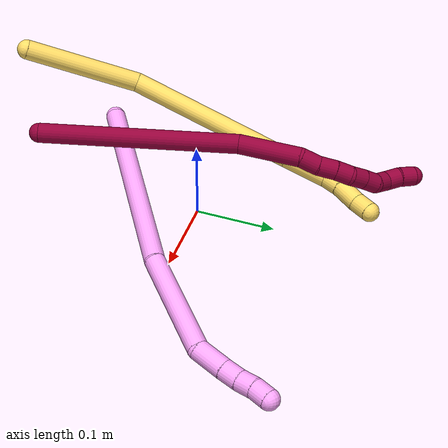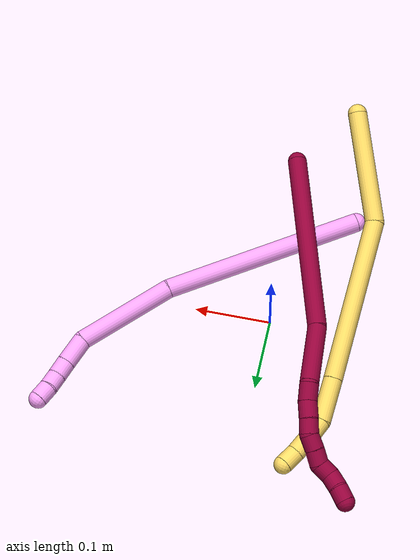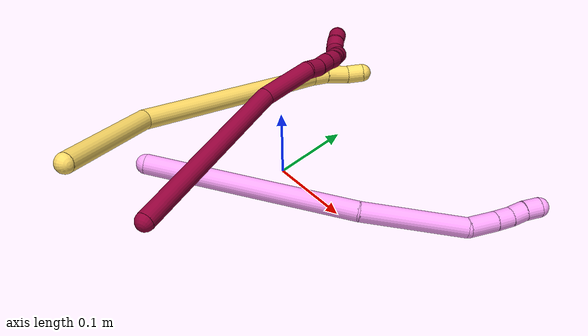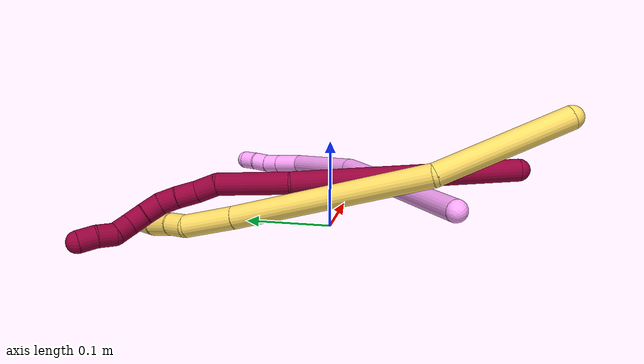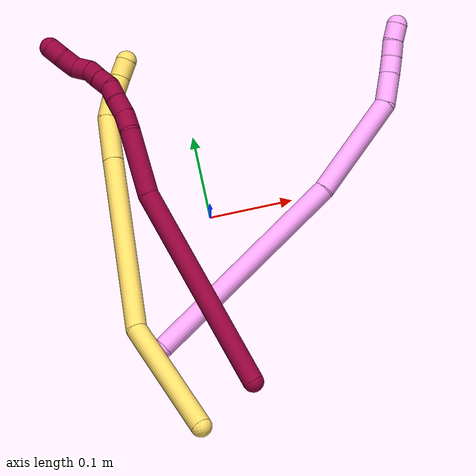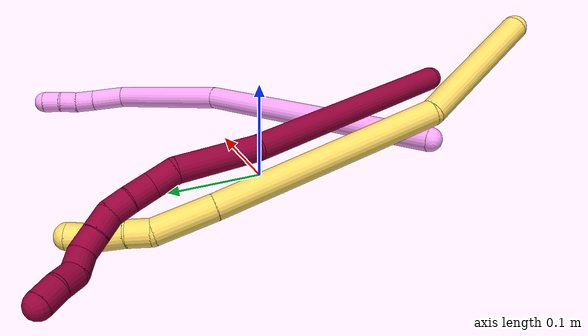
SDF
<sdf version="1.7">
 <world name="default">
  <model name="4">
   <static>0</static>
   <link name="4">
    <collision name="collision-cylinder-e_1_1_4">
     <pose>0.071654 0.084258 0.075057 -0.843086 0.565763 -0.259231</pose>
     <geometry><cylinder><radius>0.0125</radius><length>0.267337</length></cylinder></geometry>
     <surface>
      <friction><ode><mu>1.16</mu><mu2>1.16</mu2><slip1>0</slip1><slip2>0</slip2></ode></friction>
      <contact><ode><kp>1e+06</kp><kd>1</kd><max_vel>0</max_vel><min_depth>0.001</min_depth></ode></contact>
     </surface>
    </collision>
    <visual name="visual-cylinder-e_1_1_4">
     <pose>0.071654 0.084258 0.075057 -0.843086 0.565763 -0.259231</pose>
     <geometry><cylinder><radius>0.0125</radius><length>0.267337</length></cylinder></geometry>
     <material><ambient>1 0.65098 0.996078 1</ambient></material>
    </visual>
    <collision name="collision-cylinder-e_2_4_5">
     <pose>0.183529 0.214082 0.175608 -1.0607 0.65637 -0.394145</pose>
     <geometry><cylinder><radius>0.0125</radius><length>0.131817</length></cylinder></geometry>
     <surface>
      <friction><ode><mu>1.16</mu><mu2>1.16</mu2><slip1>0</slip1><slip2>0</slip2></ode></friction>
      <contact><ode><kp>1e+06</kp><kd>1</kd><max_vel>0</max_vel><min_depth>0.001</min_depth></ode></contact>
     </surface>
    </collision>
    <visual name="visual-cylinder-e_2_4_5">
     <pose>0.183529 0.214082 0.175608 -1.0607 0.65637 -0.394145</pose>
     <geometry><cylinder><radius>0.0125</radius><length>0.131817</length></cylinder></geometry>
     <material><ambient>1 0.65098 0.996078 1</ambient></material>
    </visual>
    <collision name="collision-cylinder-e_3_5_6">
     <pose>0.233503 0.275925 0.201005 -1.57674 0.539871 -0.542936</pose>
     <geometry><cylinder><radius>0.0125</radius><length>0.03795</length></cylinder></geometry>
     <surface>
      <friction><ode><mu>1.16</mu><mu2>1.16</mu2><slip1>0</slip1><slip2>0</slip2></ode></friction>
      <contact><ode><kp>1e+06</kp><kd>1</kd><max_vel>0</max_vel><min_depth>0.001</min_depth></ode></contact>
     </surface>
    </collision>
    <visual name="visual-cylinder-e_3_5_6">
     <pose>0.233503 0.275925 0.201005 -1.57674 0.539871 -0.542936</pose>
     <geometry><cylinder><radius>0.0125</radius><length>0.03795</length></cylinder></geometry>
     <material><ambient>1 0.65098 0.996078 1</ambient></material>
    </visual>
    <collision name="collision-cylinder-e_4_6_7">
     <pose>0.248565 0.30188 0.20061 -1.60156 0.501411 -0.516401</pose>
     <geometry><cylinder><radius>0.0125</radius><length>0.022086</length></cylinder></geometry>
     <surface>
      <friction><ode><mu>1.16</mu><mu2>1.16</mu2><slip1>0</slip1><slip2>0</slip2></ode></friction>
      <contact><ode><kp>1e+06</kp><kd>1</kd><max_vel>0</max_vel><min_depth>0.001</min_depth></ode></contact>
     </surface>
    </collision>
    <visual name="visual-cylinder-e_4_6_7">
     <pose>0.248565 0.30188 0.20061 -1.60156 0.501411 -0.516401</pose>
     <geometry><cylinder><radius>0.0125</radius><length>0.022086</length></cylinder></geometry>
     <material><ambient>1 0.65098 0.996078 1</ambient></material>
    </visual>
    <collision name="collision-cylinder-e_5_7_8">
     <pose>0.257288 0.321009 0.200174 -1.58546 0.346754 -0.351771</pose>
     <geometry><cylinder><radius>0.0125</radius><length>0.020099</length></cylinder></geometry>
     <surface>
      <friction><ode><mu>1.16</mu><mu2>1.16</mu2><slip1>0</slip1><slip2>0</slip2></ode></friction>
      <contact><ode><kp>1e+06</kp><kd>1</kd><max_vel>0</max_vel><min_depth>0.001</min_depth></ode></contact>
     </surface>
    </collision>
    <visual name="visual-cylinder-e_5_7_8">
     <pose>0.257288 0.321009 0.200174 -1.58546 0.346754 -0.351771</pose>
     <geometry><cylinder><radius>0.0125</radius><length>0.020099</length></cylinder></geometry>
     <material><ambient>1 0.65098 0.996078 1</ambient></material>
    </visual>
    <collision name="collision-cylinder-e_6_8_2">
     <pose>0.265433 0.339629 0.200928 -1.47371 0.4743 -0.43177</pose>
     <geometry><cylinder><radius>0.0125</radius><length>0.020711</length></cylinder></geometry>
     <surface>
      <friction><ode><mu>1.16</mu><mu2>1.16</mu2><slip1>0</slip1><slip2>0</slip2></ode></friction>
      <contact><ode><kp>1e+06</kp><kd>1</kd><max_vel>0</max_vel><min_depth>0.001</min_depth></ode></contact>
     </surface>
    </collision>
    <visual name="visual-cylinder-e_6_8_2">
     <pose>0.265433 0.339629 0.200928 -1.47371 0.4743 -0.43177</pose>
     <geometry><cylinder><radius>0.0125</radius><length>0.020711</length></cylinder></geometry>
     <material><ambient>1 0.65098 0.996078 1</ambient></material>
    </visual>
    <collision name="collision-sphere-2">
     <pose>0.270162 0.348798 0.201821 0 -0 0</pose>
     <geometry><sphere><radius>0.0125</radius></sphere></geometry>
     <surface>
      <friction><ode><mu>1.16</mu><mu2>1.16</mu2><slip1>0</slip1><slip2>0</slip2></ode></friction>
      <contact><ode><kp>1e+06</kp><kd>1</kd><max_vel>0</max_vel><min_depth>0.001</min_depth></ode></contact>
     </surface>
    </collision>
    <visual name="visual-sphere-2">
     <pose>0.270162 0.348798 0.201821 0 -0 0</pose>
     <geometry><sphere><radius>0.0125</radius></sphere></geometry>
     <material><ambient>1 0.65098 0.996078 1</ambient></material>
    </visual>
    <collision name="collision-sphere-4">
     <pose>0.143309 0.168516 0.150114 0 -0 0</pose>
     <geometry><sphere><radius>0.0125</radius></sphere></geometry>
     <surface>
      <friction><ode><mu>1.16</mu><mu2>1.16</mu2><slip1>0</slip1><slip2>0</slip2></ode></friction>
      <contact><ode><kp>1e+06</kp><kd>1</kd><max_vel>0</max_vel><min_depth>0.001</min_depth></ode></contact>
     </surface>
    </collision>
    <visual name="visual-sphere-4">
     <pose>0.143309 0.168516 0.150114 0 -0 0</pose>
     <geometry><sphere><radius>0.0125</radius></sphere></geometry>
     <material><ambient>1 0.65098 0.996078 1</ambient></material>
    </visual>
    <collision name="collision-sphere-1">
     <geometry><sphere><radius>0.0125</radius></sphere></geometry>
     <surface>
      <friction><ode><mu>1.16</mu><mu2>1.16</mu2><slip1>0</slip1><slip2>0</slip2></ode></friction>
      <contact><ode><kp>1e+06</kp><kd>1</kd><max_vel>0</max_vel><min_depth>0.001</min_depth></ode></contact>
     </surface>
    </collision>
    <visual name="visual-sphere-1">
     <geometry><sphere><radius>0.0125</radius></sphere></geometry>
     <material><ambient>1 0.65098 0.996078 1</ambient></material>
    </visual>
    <collision name="collision-sphere-8">
     <pose>0.260703 0.33046 0.200035 0 -0 0</pose>
     <geometry><sphere><radius>0.0125</radius></sphere></geometry>
     <surface>
      <friction><ode><mu>1.16</mu><mu2>1.16</mu2><slip1>0</slip1><slip2>0</slip2></ode></friction>
      <contact><ode><kp>1e+06</kp><kd>1</kd><max_vel>0</max_vel><min_depth>0.001</min_depth></ode></contact>
     </surface>
    </collision>
    <visual name="visual-sphere-8">
     <pose>0.260703 0.33046 0.200035 0 -0 0</pose>
     <geometry><sphere><radius>0.0125</radius></sphere></geometry>
     <material><ambient>1 0.65098 0.996078 1</ambient></material>
    </visual>
    <collision name="collision-sphere-5">
     <pose>0.223749 0.259649 0.201102 0 -0 0</pose>
     <geometry><sphere><radius>0.0125</radius></sphere></geometry>
     <surface>
      <friction><ode><mu>1.16</mu><mu2>1.16</mu2><slip1>0</slip1><slip2>0</slip2></ode></friction>
      <contact><ode><kp>1e+06</kp><kd>1</kd><max_vel>0</max_vel><min_depth>0.001</min_depth></ode></contact>
     </surface>
    </collision>
    <visual name="visual-sphere-5">
     <pose>0.223749 0.259649 0.201102 0 -0 0</pose>
     <geometry><sphere><radius>0.0125</radius></sphere></geometry>
     <material><ambient>1 0.65098 0.996078 1</ambient></material>
    </visual>
    <collision name="collision-sphere-6">
     <pose>0.243257 0.292201 0.200908 0 -0 0</pose>
     <geometry><sphere><radius>0.0125</radius></sphere></geometry>
     <surface>
      <friction><ode><mu>1.16</mu><mu2>1.16</mu2><slip1>0</slip1><slip2>0</slip2></ode></friction>
      <contact><ode><kp>1e+06</kp><kd>1</kd><max_vel>0</max_vel><min_depth>0.001</min_depth></ode></contact>
     </surface>
    </collision>
    <visual name="visual-sphere-6">
     <pose>0.243257 0.292201 0.200908 0 -0 0</pose>
     <geometry><sphere><radius>0.0125</radius></sphere></geometry>
     <material><ambient>1 0.65098 0.996078 1</ambient></material>
    </visual>
    <collision name="collision-sphere-7">
     <pose>0.253873 0.311559 0.200312 0 -0 0</pose>
     <geometry><sphere><radius>0.0125</radius></sphere></geometry>
     <surface>
      <friction><ode><mu>1.16</mu><mu2>1.16</mu2><slip1>0</slip1><slip2>0</slip2></ode></friction>
      <contact><ode><kp>1e+06</kp><kd>1</kd><max_vel>0</max_vel><min_depth>0.001</min_depth></ode></contact>
     </surface>
    </collision>
    <visual name="visual-sphere-7">
     <pose>0.253873 0.311559 0.200312 0 -0 0</pose>
     <geometry><sphere><radius>0.0125</radius></sphere></geometry>
     <material><ambient>1 0.65098 0.996078 1</ambient></material>
    </visual>
    <inertial>
     <pose>0.136736 0.162739 0.126914 0 -0 0</pose>
     <mass>0.5</mass>
     <inertia>
      <ixx>0.00107</ixx>
      <ixy>0</ixy>
      <ixz>0</ixz>
      <iyy>0.000942</iyy>
      <iyz>0</iyz>
      <izz>-0.002123</izz>
     </inertia>
    </inertial>
   </link>
   <pose>-0.087332 -0.146164 0.051288 0.897316 1.0552 0.617312</pose>
  </model>
  <model name="5">
   <static>0</static>
   <link name="5">
    <collision name="collision-cylinder-e_1_1_4">
     <pose>-0.001838 0.067344 -0.030782 -1.99953 -0.02482 0.038632</pose>
     <geometry><cylinder><radius>0.0125</radius><length>0.148136</length></cylinder></geometry>
     <surface>
      <friction><ode><mu>1.16</mu><mu2>1.16</mu2><slip1>0</slip1><slip2>0</slip2></ode></friction>
      <contact><ode><kp>1e+06</kp><kd>1</kd><max_vel>0</max_vel><min_depth>0.001</min_depth></ode></contact>
     </surface>
    </collision>
    <visual name="visual-cylinder-e_1_1_4">
     <pose>-0.001838 0.067344 -0.030782 -1.99953 -0.02482 0.038632</pose>
     <geometry><cylinder><radius>0.0125</radius><length>0.148136</length></cylinder></geometry>
     <material><ambient>1 0.858824 0.4 1</ambient></material>
    </visual>
    <collision name="collision-cylinder-e_2_4_5">
     <pose>-0.000189 0.243682 -0.06332 -1.58691 0.03198 -0.032499</pose>
     <geometry><cylinder><radius>0.0125</radius><length>0.218129</length></cylinder></geometry>
     <surface>
      <friction><ode><mu>1.16</mu><mu2>1.16</mu2><slip1>0</slip1><slip2>0</slip2></ode></friction>
      <contact><ode><kp>1e+06</kp><kd>1</kd><max_vel>0</max_vel><min_depth>0.001</min_depth></ode></contact>
     </surface>
    </collision>
    <visual name="visual-cylinder-e_2_4_5">
     <pose>-0.000189 0.243682 -0.06332 -1.58691 0.03198 -0.032499</pose>
     <geometry><cylinder><radius>0.0125</radius><length>0.218129</length></cylinder></geometry>
     <material><ambient>1 0.858824 0.4 1</ambient></material>
    </visual>
    <collision name="collision-cylinder-e_3_5_6">
     <pose>0.003699 0.381562 -0.064906 -1.56492 0.013888 -0.013806</pose>
     <geometry><cylinder><radius>0.0125</radius><length>0.057776</length></cylinder></geometry>
     <surface>
      <friction><ode><mu>1.16</mu><mu2>1.16</mu2><slip1>0</slip1><slip2>0</slip2></ode></friction>
      <contact><ode><kp>1e+06</kp><kd>1</kd><max_vel>0</max_vel><min_depth>0.001</min_depth></ode></contact>
     </surface>
    </collision>
    <visual name="visual-cylinder-e_3_5_6">
     <pose>0.003699 0.381562 -0.064906 -1.56492 0.013888 -0.013806</pose>
     <geometry><cylinder><radius>0.0125</radius><length>0.057776</length></cylinder></geometry>
     <material><ambient>1 0.858824 0.4 1</ambient></material>
    </visual>
    <collision name="collision-cylinder-e_4_6_7">
     <pose>0.004082 0.420671 -0.060544 -1.18168 -0.001656 0.001111</pose>
     <geometry><cylinder><radius>0.0125</radius><length>0.022102</length></cylinder></geometry>
     <surface>
      <friction><ode><mu>1.16</mu><mu2>1.16</mu2><slip1>0</slip1><slip2>0</slip2></ode></friction>
      <contact><ode><kp>1e+06</kp><kd>1</kd><max_vel>0</max_vel><min_depth>0.001</min_depth></ode></contact>
     </surface>
    </collision>
    <visual name="visual-cylinder-e_4_6_7">
     <pose>0.004082 0.420671 -0.060544 -1.18168 -0.001656 0.001111</pose>
     <geometry><cylinder><radius>0.0125</radius><length>0.022102</length></cylinder></geometry>
     <material><ambient>1 0.858824 0.4 1</ambient></material>
    </visual>
    <collision name="collision-cylinder-e_5_7_8">
     <pose>0.006616 0.444931 -0.050372 -1.168 0.165761 -0.109692</pose>
     <geometry><cylinder><radius>0.0125</radius><length>0.030936</length></cylinder></geometry>
     <surface>
      <friction><ode><mu>1.16</mu><mu2>1.16</mu2><slip1>0</slip1><slip2>0</slip2></ode></friction>
      <contact><ode><kp>1e+06</kp><kd>1</kd><max_vel>0</max_vel><min_depth>0.001</min_depth></ode></contact>
     </surface>
    </collision>
    <visual name="visual-cylinder-e_5_7_8">
     <pose>0.006616 0.444931 -0.050372 -1.168 0.165761 -0.109692</pose>
     <geometry><cylinder><radius>0.0125</radius><length>0.030936</length></cylinder></geometry>
     <material><ambient>1 0.858824 0.4 1</ambient></material>
    </visual>
    <collision name="collision-cylinder-e_6_8_2">
     <pose>0.009215 0.468841 -0.038576 -1.03858 0.004049 -0.002315</pose>
     <geometry><cylinder><radius>0.0125</radius><length>0.022921</length></cylinder></geometry>
     <surface>
      <friction><ode><mu>1.16</mu><mu2>1.16</mu2><slip1>0</slip1><slip2>0</slip2></ode></friction>
      <contact><ode><kp>1e+06</kp><kd>1</kd><max_vel>0</max_vel><min_depth>0.001</min_depth></ode></contact>
     </surface>
    </collision>
    <visual name="visual-cylinder-e_6_8_2">
     <pose>0.009215 0.468841 -0.038576 -1.03858 0.004049 -0.002315</pose>
     <geometry><cylinder><radius>0.0125</radius><length>0.022921</length></cylinder></geometry>
     <material><ambient>1 0.858824 0.4 1</ambient></material>
    </visual>
    <collision name="collision-sphere-2">
     <pose>0.009261 0.478716 -0.03276 0 -0 0</pose>
     <geometry><sphere><radius>0.0125</radius></sphere></geometry>
     <surface>
      <friction><ode><mu>1.16</mu><mu2>1.16</mu2><slip1>0</slip1><slip2>0</slip2></ode></friction>
      <contact><ode><kp>1e+06</kp><kd>1</kd><max_vel>0</max_vel><min_depth>0.001</min_depth></ode></contact>
     </surface>
    </collision>
    <visual name="visual-sphere-2">
     <pose>0.009261 0.478716 -0.03276 0 -0 0</pose>
     <geometry><sphere><radius>0.0125</radius></sphere></geometry>
     <material><ambient>1 0.858824 0.4 1</ambient></material>
    </visual>
    <collision name="collision-sphere-4">
     <pose>-0.003676 0.134688 -0.061564 0 -0 0</pose>
     <geometry><sphere><radius>0.0125</radius></sphere></geometry>
     <surface>
      <friction><ode><mu>1.16</mu><mu2>1.16</mu2><slip1>0</slip1><slip2>0</slip2></ode></friction>
      <contact><ode><kp>1e+06</kp><kd>1</kd><max_vel>0</max_vel><min_depth>0.001</min_depth></ode></contact>
     </surface>
    </collision>
    <visual name="visual-sphere-4">
     <pose>-0.003676 0.134688 -0.061564 0 -0 0</pose>
     <geometry><sphere><radius>0.0125</radius></sphere></geometry>
     <material><ambient>1 0.858824 0.4 1</ambient></material>
    </visual>
    <collision name="collision-sphere-1">
     <geometry><sphere><radius>0.0125</radius></sphere></geometry>
     <surface>
      <friction><ode><mu>1.16</mu><mu2>1.16</mu2><slip1>0</slip1><slip2>0</slip2></ode></friction>
      <contact><ode><kp>1e+06</kp><kd>1</kd><max_vel>0</max_vel><min_depth>0.001</min_depth></ode></contact>
     </surface>
    </collision>
    <visual name="visual-sphere-1">
     <geometry><sphere><radius>0.0125</radius></sphere></geometry>
     <material><ambient>1 0.858824 0.4 1</ambient></material>
    </visual>
    <collision name="collision-sphere-8">
     <pose>0.009168 0.458966 -0.044391 0 -0 0</pose>
     <geometry><sphere><radius>0.0125</radius></sphere></geometry>
     <surface>
      <friction><ode><mu>1.16</mu><mu2>1.16</mu2><slip1>0</slip1><slip2>0</slip2></ode></friction>
      <contact><ode><kp>1e+06</kp><kd>1</kd><max_vel>0</max_vel><min_depth>0.001</min_depth></ode></contact>
     </surface>
    </collision>
    <visual name="visual-sphere-8">
     <pose>0.009168 0.458966 -0.044391 0 -0 0</pose>
     <geometry><sphere><radius>0.0125</radius></sphere></geometry>
     <material><ambient>1 0.858824 0.4 1</ambient></material>
    </visual>
    <collision name="collision-sphere-5">
     <pose>0.003298 0.352677 -0.065076 0 -0 0</pose>
     <geometry><sphere><radius>0.0125</radius></sphere></geometry>
     <surface>
      <friction><ode><mu>1.16</mu><mu2>1.16</mu2><slip1>0</slip1><slip2>0</slip2></ode></friction>
      <contact><ode><kp>1e+06</kp><kd>1</kd><max_vel>0</max_vel><min_depth>0.001</min_depth></ode></contact>
     </surface>
    </collision>
    <visual name="visual-sphere-5">
     <pose>0.003298 0.352677 -0.065076 0 -0 0</pose>
     <geometry><sphere><radius>0.0125</radius></sphere></geometry>
     <material><ambient>1 0.858824 0.4 1</ambient></material>
    </visual>
    <collision name="collision-sphere-6">
     <pose>0.004101 0.410447 -0.064737 0 -0 0</pose>
     <geometry><sphere><radius>0.0125</radius></sphere></geometry>
     <surface>
      <friction><ode><mu>1.16</mu><mu2>1.16</mu2><slip1>0</slip1><slip2>0</slip2></ode></friction>
      <contact><ode><kp>1e+06</kp><kd>1</kd><max_vel>0</max_vel><min_depth>0.001</min_depth></ode></contact>
     </surface>
    </collision>
    <visual name="visual-sphere-6">
     <pose>0.004101 0.410447 -0.064737 0 -0 0</pose>
     <geometry><sphere><radius>0.0125</radius></sphere></geometry>
     <material><ambient>1 0.858824 0.4 1</ambient></material>
    </visual>
    <collision name="collision-sphere-7">
     <pose>0.004064 0.430896 -0.056352 0 -0 0</pose>
     <geometry><sphere><radius>0.0125</radius></sphere></geometry>
     <surface>
      <friction><ode><mu>1.16</mu><mu2>1.16</mu2><slip1>0</slip1><slip2>0</slip2></ode></friction>
      <contact><ode><kp>1e+06</kp><kd>1</kd><max_vel>0</max_vel><min_depth>0.001</min_depth></ode></contact>
     </surface>
    </collision>
    <visual name="visual-sphere-7">
     <pose>0.004064 0.430896 -0.056352 0 -0 0</pose>
     <geometry><sphere><radius>0.0125</radius></sphere></geometry>
     <material><ambient>1 0.858824 0.4 1</ambient></material>
    </visual>
    <inertial>
     <pose>0.000813 0.237967 -0.051805 0 -0 0</pose>
     <mass>0.5</mass>
     <inertia>
      <ixx>0.001157</ixx>
      <ixy>0</ixy>
      <ixz>0</ixz>
      <iyy>-0.000106</iyy>
      <iyz>0</iyz>
      <izz>-0.001174</izz>
     </inertia>
    </inertial>
   </link>
   <pose>-0.064843 -0.253589 0.146717 -0.543431 1.09183 -0.562278</pose>
  </model>
  <model name="8">
   <static>0</static>
   <link name="8">
    <collision name="collision-cylinder-e_1_1_4">
     <pose>-0.024434 0.000362 0.123953 -0.00292 -0.19463 0.000285</pose>
     <geometry><cylinder><radius>0.0125</radius><length>0.252679</length></cylinder></geometry>
     <surface>
      <friction><ode><mu>1.16</mu><mu2>1.16</mu2><slip1>0</slip1><slip2>0</slip2></ode></friction>
      <contact><ode><kp>1e+06</kp><kd>1</kd><max_vel>0</max_vel><min_depth>0.001</min_depth></ode></contact>
     </surface>
    </collision>
    <visual name="visual-cylinder-e_1_1_4">
     <pose>-0.024434 0.000362 0.123953 -0.00292 -0.19463 0.000285</pose>
     <geometry><cylinder><radius>0.0125</radius><length>0.252679</length></cylinder></geometry>
     <material><ambient>0.584314 0 0.227451 1</ambient></material>
    </visual>
    <collision name="collision-cylinder-e_2_4_5">
     <pose>-0.064941 0.003501 0.284436 -0.075867 -0.413431 0.015918</pose>
     <geometry><cylinder><radius>0.0125</radius><length>0.08001</length></cylinder></geometry>
     <surface>
      <friction><ode><mu>1.16</mu><mu2>1.16</mu2><slip1>0</slip1><slip2>0</slip2></ode></friction>
      <contact><ode><kp>1e+06</kp><kd>1</kd><max_vel>0</max_vel><min_depth>0.001</min_depth></ode></contact>
     </surface>
    </collision>
    <visual name="visual-cylinder-e_2_4_5">
     <pose>-0.064941 0.003501 0.284436 -0.075867 -0.413431 0.015918</pose>
     <geometry><cylinder><radius>0.0125</radius><length>0.08001</length></cylinder></geometry>
     <material><ambient>0.584314 0 0.227451 1</ambient></material>
    </visual>
    <collision name="collision-cylinder-e_3_5_6">
     <pose>-0.086595 0.003247 0.331238 0.286833 -0.480444 -0.070716</pose>
     <geometry><cylinder><radius>0.0125</radius><length>0.024156</length></cylinder></geometry>
     <surface>
      <friction><ode><mu>1.16</mu><mu2>1.16</mu2><slip1>0</slip1><slip2>0</slip2></ode></friction>
      <contact><ode><kp>1e+06</kp><kd>1</kd><max_vel>0</max_vel><min_depth>0.001</min_depth></ode></contact>
     </surface>
    </collision>
    <visual name="visual-cylinder-e_3_5_6">
     <pose>-0.086595 0.003247 0.331238 0.286833 -0.480444 -0.070716</pose>
     <geometry><cylinder><radius>0.0125</radius><length>0.024156</length></cylinder></geometry>
     <material><ambient>0.584314 0 0.227451 1</ambient></material>
    </visual>
    <collision name="collision-cylinder-e_4_6_7">
     <pose>-0.095521 -0.002118 0.352289 0.213376 -0.294361 -0.031751</pose>
     <geometry><cylinder><radius>0.0125</radius><length>0.023047</length></cylinder></geometry>
     <surface>
      <friction><ode><mu>1.16</mu><mu2>1.16</mu2><slip1>0</slip1><slip2>0</slip2></ode></friction>
      <contact><ode><kp>1e+06</kp><kd>1</kd><max_vel>0</max_vel><min_depth>0.001</min_depth></ode></contact>
     </surface>
    </collision>
    <visual name="visual-cylinder-e_4_6_7">
     <pose>-0.095521 -0.002118 0.352289 0.213376 -0.294361 -0.031751</pose>
     <geometry><cylinder><radius>0.0125</radius><length>0.023047</length></cylinder></geometry>
     <material><ambient>0.584314 0 0.227451 1</ambient></material>
    </visual>
    <collision name="collision-cylinder-e_5_7_8">
     <pose>-0.102454 -0.007118 0.372036 0.288797 -0.366339 -0.05386</pose>
     <geometry><cylinder><radius>0.0125</radius><length>0.020043</length></cylinder></geometry>
     <surface>
      <friction><ode><mu>1.16</mu><mu2>1.16</mu2><slip1>0</slip1><slip2>0</slip2></ode></friction>
      <contact><ode><kp>1e+06</kp><kd>1</kd><max_vel>0</max_vel><min_depth>0.001</min_depth></ode></contact>
     </surface>
    </collision>
    <visual name="visual-cylinder-e_5_7_8">
     <pose>-0.102454 -0.007118 0.372036 0.288797 -0.366339 -0.05386</pose>
     <geometry><cylinder><radius>0.0125</radius><length>0.020043</length></cylinder></geometry>
     <material><ambient>0.584314 0 0.227451 1</ambient></material>
    </visual>
    <collision name="collision-cylinder-e_6_8_9">
     <pose>-0.106655 -0.014988 0.389556 0.54679 -0.060978 -0.017104</pose>
     <geometry><cylinder><radius>0.0125</radius><length>0.020059</length></cylinder></geometry>
     <surface>
      <friction><ode><mu>1.16</mu><mu2>1.16</mu2><slip1>0</slip1><slip2>0</slip2></ode></friction>
      <contact><ode><kp>1e+06</kp><kd>1</kd><max_vel>0</max_vel><min_depth>0.001</min_depth></ode></contact>
     </surface>
    </collision>
    <visual name="visual-cylinder-e_6_8_9">
     <pose>-0.106655 -0.014988 0.389556 0.54679 -0.060978 -0.017104</pose>
     <geometry><cylinder><radius>0.0125</radius><length>0.020059</length></cylinder></geometry>
     <material><ambient>0.584314 0 0.227451 1</ambient></material>
    </visual>
    <collision name="collision-cylinder-e_7_9_10">
     <pose>-0.10861 -0.025555 0.406441 0.57165 -0.134859 -0.039686</pose>
     <geometry><cylinder><radius>0.0125</radius><length>0.02</length></cylinder></geometry>
     <surface>
      <friction><ode><mu>1.16</mu><mu2>1.16</mu2><slip1>0</slip1><slip2>0</slip2></ode></friction>
      <contact><ode><kp>1e+06</kp><kd>1</kd><max_vel>0</max_vel><min_depth>0.001</min_depth></ode></contact>
     </surface>
    </collision>
    <visual name="visual-cylinder-e_7_9_10">
     <pose>-0.10861 -0.025555 0.406441 0.57165 -0.134859 -0.039686</pose>
     <geometry><cylinder><radius>0.0125</radius><length>0.02</length></cylinder></geometry>
     <material><ambient>0.584314 0 0.227451 1</ambient></material>
    </visual>
    <collision name="collision-cylinder-e_8_10_11">
     <pose>-0.106394 -0.036111 0.422543 0.589534 0.364082 0.111661</pose>
     <geometry><cylinder><radius>0.0125</radius><length>0.020001</length></cylinder></geometry>
     <surface>
      <friction><ode><mu>1.16</mu><mu2>1.16</mu2><slip1>0</slip1><slip2>0</slip2></ode></friction>
      <contact><ode><kp>1e+06</kp><kd>1</kd><max_vel>0</max_vel><min_depth>0.001</min_depth></ode></contact>
     </surface>
    </collision>
    <visual name="visual-cylinder-e_8_10_11">
     <pose>-0.106394 -0.036111 0.422543 0.589534 0.364082 0.111661</pose>
     <geometry><cylinder><radius>0.0125</radius><length>0.020001</length></cylinder></geometry>
     <material><ambient>0.584314 0 0.227451 1</ambient></material>
    </visual>
    <collision name="collision-cylinder-e_9_11_12">
     <pose>-0.100752 -0.04203 0.440065 0.073946 0.209542 0.007779</pose>
     <geometry><cylinder><radius>0.0125</radius><length>0.020001</length></cylinder></geometry>
     <surface>
      <friction><ode><mu>1.16</mu><mu2>1.16</mu2><slip1>0</slip1><slip2>0</slip2></ode></friction>
      <contact><ode><kp>1e+06</kp><kd>1</kd><max_vel>0</max_vel><min_depth>0.001</min_depth></ode></contact>
     </surface>
    </collision>
    <visual name="visual-cylinder-e_9_11_12">
     <pose>-0.100752 -0.04203 0.440065 0.073946 0.209542 0.007779</pose>
     <geometry><cylinder><radius>0.0125</radius><length>0.020001</length></cylinder></geometry>
     <material><ambient>0.584314 0 0.227451 1</ambient></material>
    </visual>
    <collision name="collision-cylinder-e_10_12_2">
     <pose>-0.09775 -0.045177 0.45948 0.245946 0.092323 0.011419</pose>
     <geometry><cylinder><radius>0.0125</radius><length>0.020004</length></cylinder></geometry>
     <surface>
      <friction><ode><mu>1.16</mu><mu2>1.16</mu2><slip1>0</slip1><slip2>0</slip2></ode></friction>
      <contact><ode><kp>1e+06</kp><kd>1</kd><max_vel>0</max_vel><min_depth>0.001</min_depth></ode></contact>
     </surface>
    </collision>
    <visual name="visual-cylinder-e_10_12_2">
     <pose>-0.09775 -0.045177 0.45948 0.245946 0.092323 0.011419</pose>
     <geometry><cylinder><radius>0.0125</radius><length>0.020004</length></cylinder></geometry>
     <material><ambient>0.584314 0 0.227451 1</ambient></material>
    </visual>
    <collision name="collision-sphere-2">
     <pose>-0.096828 -0.047602 0.46914 0 -0 0</pose>
     <geometry><sphere><radius>0.0125</radius></sphere></geometry>
     <surface>
      <friction><ode><mu>1.16</mu><mu2>1.16</mu2><slip1>0</slip1><slip2>0</slip2></ode></friction>
      <contact><ode><kp>1e+06</kp><kd>1</kd><max_vel>0</max_vel><min_depth>0.001</min_depth></ode></contact>
     </surface>
    </collision>
    <visual name="visual-sphere-2">
     <pose>-0.096828 -0.047602 0.46914 0 -0 0</pose>
     <geometry><sphere><radius>0.0125</radius></sphere></geometry>
     <material><ambient>0.584314 0 0.227451 1</ambient></material>
    </visual>
    <collision name="collision-sphere-12">
     <pose>-0.098672 -0.042752 0.44982 0 -0 0</pose>
     <geometry><sphere><radius>0.0125</radius></sphere></geometry>
     <surface>
      <friction><ode><mu>1.16</mu><mu2>1.16</mu2><slip1>0</slip1><slip2>0</slip2></ode></friction>
      <contact><ode><kp>1e+06</kp><kd>1</kd><max_vel>0</max_vel><min_depth>0.001</min_depth></ode></contact>
     </surface>
    </collision>
    <visual name="visual-sphere-12">
     <pose>-0.098672 -0.042752 0.44982 0 -0 0</pose>
     <geometry><sphere><radius>0.0125</radius></sphere></geometry>
     <material><ambient>0.584314 0 0.227451 1</ambient></material>
    </visual>
    <collision name="collision-sphere-11">
     <pose>-0.102833 -0.041307 0.430311 0 -0 0</pose>
     <geometry><sphere><radius>0.0125</radius></sphere></geometry>
     <surface>
      <friction><ode><mu>1.16</mu><mu2>1.16</mu2><slip1>0</slip1><slip2>0</slip2></ode></friction>
      <contact><ode><kp>1e+06</kp><kd>1</kd><max_vel>0</max_vel><min_depth>0.001</min_depth></ode></contact>
     </surface>
    </collision>
    <visual name="visual-sphere-11">
     <pose>-0.102833 -0.041307 0.430311 0 -0 0</pose>
     <geometry><sphere><radius>0.0125</radius></sphere></geometry>
     <material><ambient>0.584314 0 0.227451 1</ambient></material>
    </visual>
    <collision name="collision-sphere-10">
     <pose>-0.109955 -0.030916 0.414775 0 -0 0</pose>
     <geometry><sphere><radius>0.0125</radius></sphere></geometry>
     <surface>
      <friction><ode><mu>1.16</mu><mu2>1.16</mu2><slip1>0</slip1><slip2>0</slip2></ode></friction>
      <contact><ode><kp>1e+06</kp><kd>1</kd><max_vel>0</max_vel><min_depth>0.001</min_depth></ode></contact>
     </surface>
    </collision>
    <visual name="visual-sphere-10">
     <pose>-0.109955 -0.030916 0.414775 0 -0 0</pose>
     <geometry><sphere><radius>0.0125</radius></sphere></geometry>
     <material><ambient>0.584314 0 0.227451 1</ambient></material>
    </visual>
    <collision name="collision-sphere-9">
     <pose>-0.107266 -0.020193 0.398108 0 -0 0</pose>
     <geometry><sphere><radius>0.0125</radius></sphere></geometry>
     <surface>
      <friction><ode><mu>1.16</mu><mu2>1.16</mu2><slip1>0</slip1><slip2>0</slip2></ode></friction>
      <contact><ode><kp>1e+06</kp><kd>1</kd><max_vel>0</max_vel><min_depth>0.001</min_depth></ode></contact>
     </surface>
    </collision>
    <visual name="visual-sphere-9">
     <pose>-0.107266 -0.020193 0.398108 0 -0 0</pose>
     <geometry><sphere><radius>0.0125</radius></sphere></geometry>
     <material><ambient>0.584314 0 0.227451 1</ambient></material>
    </visual>
    <collision name="collision-sphere-4">
     <pose>-0.048869 0.000724 0.247907 0 -0 0</pose>
     <geometry><sphere><radius>0.0125</radius></sphere></geometry>
     <surface>
      <friction><ode><mu>1.16</mu><mu2>1.16</mu2><slip1>0</slip1><slip2>0</slip2></ode></friction>
      <contact><ode><kp>1e+06</kp><kd>1</kd><max_vel>0</max_vel><min_depth>0.001</min_depth></ode></contact>
     </surface>
    </collision>
    <visual name="visual-sphere-4">
     <pose>-0.048869 0.000724 0.247907 0 -0 0</pose>
     <geometry><sphere><radius>0.0125</radius></sphere></geometry>
     <material><ambient>0.584314 0 0.227451 1</ambient></material>
    </visual>
    <collision name="collision-sphere-1">
     <geometry><sphere><radius>0.0125</radius></sphere></geometry>
     <surface>
      <friction><ode><mu>1.16</mu><mu2>1.16</mu2><slip1>0</slip1><slip2>0</slip2></ode></friction>
      <contact><ode><kp>1e+06</kp><kd>1</kd><max_vel>0</max_vel><min_depth>0.001</min_depth></ode></contact>
     </surface>
    </collision>
    <visual name="visual-sphere-1">
     <geometry><sphere><radius>0.0125</radius></sphere></geometry>
     <material><ambient>0.584314 0 0.227451 1</ambient></material>
    </visual>
    <collision name="collision-sphere-8">
     <pose>-0.106044 -0.009783 0.381005 0 -0 0</pose>
     <geometry><sphere><radius>0.0125</radius></sphere></geometry>
     <surface>
      <friction><ode><mu>1.16</mu><mu2>1.16</mu2><slip1>0</slip1><slip2>0</slip2></ode></friction>
      <contact><ode><kp>1e+06</kp><kd>1</kd><max_vel>0</max_vel><min_depth>0.001</min_depth></ode></contact>
     </surface>
    </collision>
    <visual name="visual-sphere-8">
     <pose>-0.106044 -0.009783 0.381005 0 -0 0</pose>
     <geometry><sphere><radius>0.0125</radius></sphere></geometry>
     <material><ambient>0.584314 0 0.227451 1</ambient></material>
    </visual>
    <collision name="collision-sphere-5">
     <pose>-0.081013 0.006277 0.320965 0 -0 0</pose>
     <geometry><sphere><radius>0.0125</radius></sphere></geometry>
     <surface>
      <friction><ode><mu>1.16</mu><mu2>1.16</mu2><slip1>0</slip1><slip2>0</slip2></ode></friction>
      <contact><ode><kp>1e+06</kp><kd>1</kd><max_vel>0</max_vel><min_depth>0.001</min_depth></ode></contact>
     </surface>
    </collision>
    <visual name="visual-sphere-5">
     <pose>-0.081013 0.006277 0.320965 0 -0 0</pose>
     <geometry><sphere><radius>0.0125</radius></sphere></geometry>
     <material><ambient>0.584314 0 0.227451 1</ambient></material>
    </visual>
    <collision name="collision-sphere-6">
     <pose>-0.092178 0.000217 0.341511 0 -0 0</pose>
     <geometry><sphere><radius>0.0125</radius></sphere></geometry>
     <surface>
      <friction><ode><mu>1.16</mu><mu2>1.16</mu2><slip1>0</slip1><slip2>0</slip2></ode></friction>
      <contact><ode><kp>1e+06</kp><kd>1</kd><max_vel>0</max_vel><min_depth>0.001</min_depth></ode></contact>
     </surface>
    </collision>
    <visual name="visual-sphere-6">
     <pose>-0.092178 0.000217 0.341511 0 -0 0</pose>
     <geometry><sphere><radius>0.0125</radius></sphere></geometry>
     <material><ambient>0.584314 0 0.227451 1</ambient></material>
    </visual>
    <collision name="collision-sphere-7">
     <pose>-0.098864 -0.004454 0.363067 0 -0 0</pose>
     <geometry><sphere><radius>0.0125</radius></sphere></geometry>
     <surface>
      <friction><ode><mu>1.16</mu><mu2>1.16</mu2><slip1>0</slip1><slip2>0</slip2></ode></friction>
      <contact><ode><kp>1e+06</kp><kd>1</kd><max_vel>0</max_vel><min_depth>0.001</min_depth></ode></contact>
     </surface>
    </collision>
    <visual name="visual-sphere-7">
     <pose>-0.098864 -0.004454 0.363067 0 -0 0</pose>
     <geometry><sphere><radius>0.0125</radius></sphere></geometry>
     <material><ambient>0.584314 0 0.227451 1</ambient></material>
    </visual>
    <inertial>
     <pose>-0.056254 -0.00604 0.240086 0 -0 0</pose>
     <mass>0.5</mass>
     <inertia>
      <ixx>0.001376</ixx>
      <ixy>0</ixy>
      <ixz>0</ixz>
      <iyy>0.001409</iyy>
      <iyz>0</iyz>
      <izz>0.000315</izz>
     </inertia>
    </inertial>
   </link>
   <pose>0.00556 -0.210229 0.075374 1.53552 -0.369155 -2.65373</pose>
  </model>
 </world>
</sdf>
